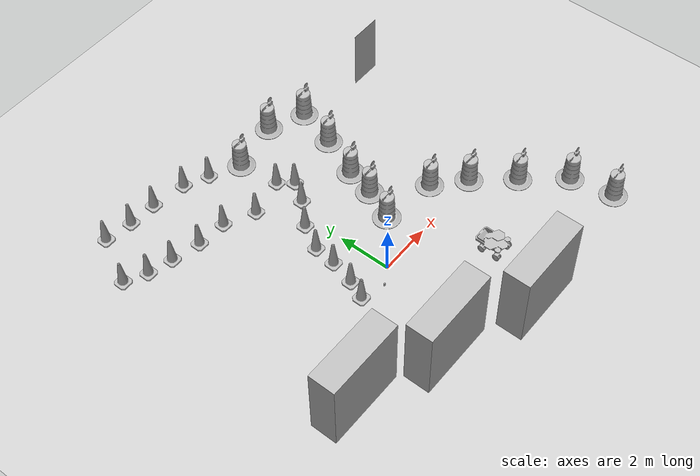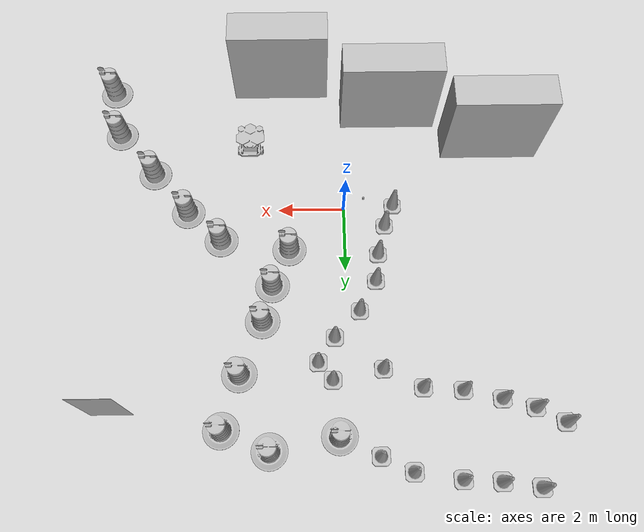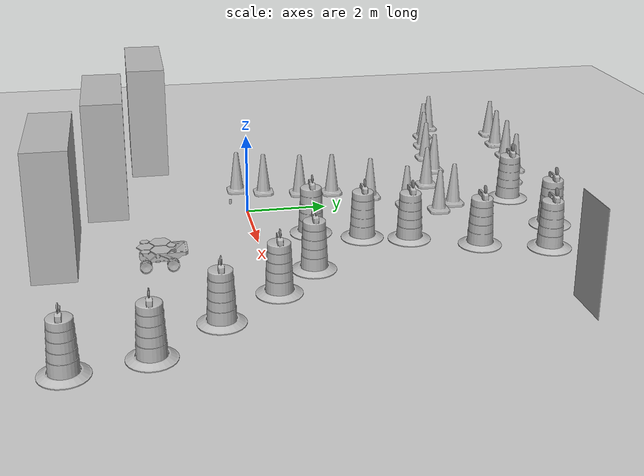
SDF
<sdf version="1.7">
 <world name="default">
  <light name="sun" type="directional">
   <pose>0 0 10 0 -0 0</pose>
   <diffuse>0.8 0.8 0.8 1</diffuse>
   <specular>0.2 0.2 0.2 1</specular>
   <attenuation>
    <range>1000</range>
    <constant>0.9</constant>
    <linear>0.01</linear>
    <quadratic>0.001</quadratic>
   </attenuation>
   <direction>-0.5 0.1 -0.9</direction>
   <spot><inner_angle>0</inner_angle><outer_angle>0</outer_angle><falloff>0</falloff></spot>
  </light>
  <model name="ground_plane">
   <static>1</static>
   <link name="link">
    <collision name="collision">
     <geometry><plane><normal>0 0 1</normal><size>100 100</size></plane></geometry>
     <surface>
      <contact><collide_bitmask>65535</collide_bitmask></contact>
      <friction><ode><mu>100</mu><mu2>50</mu2></ode></friction>
     </surface>
    </collision>
    <visual name="visual">
     <cast_shadows>0</cast_shadows>
     <geometry><plane><normal>0 0 1</normal><size>100 100</size></plane></geometry>
     <material>
      <script><uri>file://media/materials/scripts/gazebo.material</uri><name>Gazebo/Grey</name></script>
     </material>
    </visual>
   </link>
  </model>
  <gravity>0 0 -9.8</gravity>
  <magnetic_field>6e-06 2.3e-05 -4.2e-05</magnetic_field>
  <atmosphere type="adiabatic"/>
  <physics type="ode">
   <max_step_size>0.001</max_step_size>
   <real_time_factor>1</real_time_factor>
   <real_time_update_rate>1000</real_time_update_rate>
  </physics>
  <scene><ambient>0.4 0.4 0.4 1</ambient><background>0.7 0.7 0.7 1</background><shadows>1</shadows></scene>
  <spherical_coordinates>
   <surface_model>EARTH_WGS84</surface_model>
   <latitude_deg>0</latitude_deg>
   <longitude_deg>0</longitude_deg>
   <elevation>0</elevation>
   <heading_deg>0</heading_deg>
  </spherical_coordinates>
  <model name="mars_rover">
   <static>1</static>
   <link name="link">
    <collision name="solar_panel_collision">
     <pose>0 -0.06945 0.47293 0 -0 0</pose>
     <geometry><box><size>0.87974 0.8821 0.02602</size></box></geometry>
    </collision>
    <collision name="chassis_collision">
     <pose>0 -0.05 0.31475 0 -0 0</pose>
     <geometry><box><size>0.49522 0.67401 0.28915</size></box></geometry>
    </collision>
    <collision name="rear_left_bumper_collision">
     <pose>0.30107 0.3835 0.38976 0 -0 0</pose>
     <geometry><box><size>0.04442 0.38897 0.07918</size></box></geometry>
    </collision>
    <collision name="rear_right_bumper_collision">
     <pose>-0.30107 0.3835 0.38976 0 -0 0</pose>
     <geometry><box><size>0.04442 0.38897 0.07918</size></box></geometry>
    </collision>
    <collision name="rear_bumper_collision">
     <pose>0 0.59414 0.38976 0 -0 0</pose>
     <geometry><box><size>0.56656 0.04442 0.07918</size></box></geometry>
    </collision>
    <collision name="bin_back_panel_collision">
     <pose>0 0.47 0.32114 0.69137 -0 0</pose>
     <geometry><box><size>0.43774 0.212366 0.05173</size></box></geometry>
    </collision>
    <collision name="bin_left_panel_collision1">
     <pose>0.22615 0.32897 0.33193 0 -0 0</pose>
     <geometry><box><size>0.01116 0.19338 0.16304</size></box></geometry>
    </collision>
    <collision name="bin_left_panel_collision2">
     <pose>0.22615 0.471 0.39308 0 -0 0</pose>
     <geometry><box><size>0.01116 0.15 0.04</size></box></geometry>
    </collision>
    <collision name="bin_left_panel_collision3">
     <pose>0.22615 0.45 0.35308 0 -0 0</pose>
     <geometry><box><size>0.01116 0.15 0.04</size></box></geometry>
    </collision>
    <collision name="bin_left_panel_collision4">
     <pose>0.22615 0.39308 0.31308 0 -0 0</pose>
     <geometry><box><size>0.01116 0.15 0.04</size></box></geometry>
    </collision>
    <collision name="bin_right_panel_collision1">
     <pose>-0.22615 0.32897 0.33193 0 -0 0</pose>
     <geometry><box><size>0.01116 0.19338 0.16304</size></box></geometry>
    </collision>
    <collision name="bin_right_panel_collision2">
     <pose>-0.22615 0.471 0.39308 0 -0 0</pose>
     <geometry><box><size>0.01116 0.15 0.04</size></box></geometry>
    </collision>
    <collision name="bin_right_panel_collision3">
     <pose>-0.22615 0.45 0.35308 0 -0 0</pose>
     <geometry><box><size>0.01116 0.15 0.04</size></box></geometry>
    </collision>
    <collision name="bin_right_panel_collision4">
     <pose>-0.22615 0.39308 0.31308 0 -0 0</pose>
     <geometry><box><size>0.01116 0.15 0.04</size></box></geometry>
    </collision>
    <collision name="bin_front_panel_collision">
     <pose>0 0.30047 0.32114 2.26207 -0 0</pose>
     <geometry><box><size>0.43774 0.212366 0.05173</size></box></geometry>
    </collision>
    <collision name="front_left_wheel_collision">
     <pose>0.31103 -0.32115 0.1358 1.5707 0 1.5707</pose>
     <geometry><cylinder><radius>0.1358</radius><length>0.1641</length></cylinder></geometry>
    </collision>
    <collision name="front_right_wheel_collision">
     <pose>-0.31103 -0.32115 0.1358 1.5707 0 1.5707</pose>
     <geometry><cylinder><radius>0.1358</radius><length>0.1641</length></cylinder></geometry>
    </collision>
    <collision name="rear_left_wheel_collision">
     <pose>0.31103 0.28049 0.1358 1.5707 0 1.5707</pose>
     <geometry><cylinder><radius>0.1358</radius><length>0.1641</length></cylinder></geometry>
    </collision>
    <collision name="rear_right_wheel_collision">
     <pose>-0.31103 0.28049 0.1358 1.5707 0 1.5707</pose>
     <geometry><cylinder><radius>0.1358</radius><length>0.1641</length></cylinder></geometry>
    </collision>
    <visual name="visual">
     <geometry><mesh><uri>model://mars_rover/meshes/rover.dae</uri></mesh></geometry>
    </visual>
   </link>
   <pose>2.91045 -2.34324 0 0 -0 0</pose>
  </model>
  <model name="nist_maze_wall_240">
   <static>1</static>
   <link name="nist__maze_wall_240_link">
    <collision name="collision">
     <geometry>
      <mesh><uri>model://nist_maze_wall_240/meshes/nist_maze_wall_240.dae</uri><scale>1 1 1</scale></mesh>
     </geometry>
    </collision>
    <visual name="visual">
     <geometry>
      <mesh><uri>model://nist_maze_wall_240/meshes/nist_maze_wall_240.dae</uri><scale>1 1 1</scale></mesh>
     </geometry>
    </visual>
   </link>
   <pose>6.56334 5.58057 0 0 -0 0</pose>
  </model>
  <model name="brick_box_3x1x3">
   <static>1</static>
   <link name="chassis">
    <pose>0 0 1.5 0 -0 0</pose>
    <collision name="collision"><geometry><box><size>3 1 3</size></box></geometry></collision>
    <visual name="visual">
     <geometry><mesh><uri>model://brick_box_3x1x3/meshes/simple_box.dae</uri><scale>3 1 3</scale></mesh></geometry>
     <material>
      <script>
       <uri>model://brick_box_3x1x3/materials/scripts</uri>
       <uri>model://brick_box_3x1x3/materials/textures</uri>
       <name>BrickBox/Diffuse</name>
      </script>
     </material>
    </visual>
   </link>
   <pose>1.9547 -4.64156 0 0 -0 0</pose>
  </model>
  <model name="brick_box_3x1x3_0">
   <static>1</static>
   <link name="chassis">
    <pose>0 0 1.5 0 -0 0</pose>
    <collision name="collision"><geometry><box><size>3 1 3</size></box></geometry></collision>
    <visual name="visual">
     <geometry><mesh><uri>model://brick_box_3x1x3/meshes/simple_box.dae</uri><scale>3 1 3</scale></mesh></geometry>
     <material>
      <script>
       <uri>model://brick_box_3x1x3/materials/scripts</uri>
       <uri>model://brick_box_3x1x3/materials/textures</uri>
       <name>BrickBox/Diffuse</name>
      </script>
     </material>
    </visual>
   </link>
   <pose>-1.46563 -3.47447 0 0 -0 0</pose>
  </model>
  <model name="brick_box_3x1x3_1">
   <static>1</static>
   <link name="chassis">
    <pose>0 0 1.5 0 -0 0</pose>
    <collision name="collision"><geometry><box><size>3 1 3</size></box></geometry></collision>
    <visual name="visual">
     <geometry><mesh><uri>model://brick_box_3x1x3/meshes/simple_box.dae</uri><scale>3 1 3</scale></mesh></geometry>
     <material>
      <script>
       <uri>model://brick_box_3x1x3/materials/scripts</uri>
       <uri>model://brick_box_3x1x3/materials/textures</uri>
       <name>BrickBox/Diffuse</name>
      </script>
     </material>
    </visual>
   </link>
   <pose>-4.63428 -2.31546 0 0 -0 0</pose>
  </model>
  <model name="coke_can">
   <link name="link">
    <inertial>
     <pose>0 0 0.06 0 -0 0</pose>
     <mass>0.39</mass>
     <inertia>
      <ixx>0.00055575</ixx>
      <ixy>0</ixy>
      <ixz>0</ixz>
      <iyy>0.00055575</iyy>
      <iyz>0</iyz>
      <izz>0.0001755</izz>
     </inertia>
    </inertial>
    <collision name="collision">
     <pose>0.003937 0.004724 -0.18 0 -0 0</pose>
     <geometry><mesh><uri>model://coke_can/meshes/coke_can.dae</uri></mesh></geometry>
     <surface>
      <friction><ode><mu>1</mu><mu2>1</mu2></ode></friction>
      <contact><ode><kp>1e+07</kp><kd>1</kd><min_depth>0.001</min_depth><max_vel>0.1</max_vel></ode></contact>
     </surface>
    </collision>
    <visual name="visual">
     <pose>0.003937 0.004724 -0.18 0 -0 0</pose>
     <geometry><mesh><uri>model://coke_can/meshes/coke_can.dae</uri></mesh></geometry>
    </visual>
   </link>
   <pose>-0.618483 -0.372237 -0.003472 -0.036729 0.008267 -0.000719</pose>
  </model>
  <model name="Construction Barrel">
   <link name="link">
    <inertial>
     <pose>0 0 0.4 0 -0 0</pose>
     <mass>500</mass>
     <inertia><ixx>51.2096</ixx><iyy>51.2096</iyy><izz>25</izz><ixy>0</ixy><ixz>0</ixz><iyz>0</iyz></inertia>
    </inertial>
    <collision name="collision">
     <geometry><mesh><uri>model://construction_barrel/meshes/construction_barrel.dae</uri></mesh></geometry>
    </collision>
    <visual name="visual">
     <geometry><mesh><uri>model://construction_barrel/meshes/construction_barrel.dae</uri></mesh></geometry>
    </visual>
   </link>
   <pose>7.39967 -4.30252 0 0 0 -4.1e-05</pose>
  </model>
  <model name="Construction Barrel_clone">
   <link name="link">
    <inertial>
     <pose>0 0 0.4 0 -0 0</pose>
     <mass>500</mass>
     <inertia><ixx>51.2096</ixx><iyy>51.2096</iyy><izz>25</izz><ixy>0</ixy><ixz>0</ixz><iyz>0</iyz></inertia>
    </inertial>
    <collision name="collision">
     <geometry><mesh><uri>model://construction_barrel/meshes/construction_barrel.dae</uri></mesh></geometry>
    </collision>
    <visual name="visual">
     <geometry><mesh><uri>model://construction_barrel/meshes/construction_barrel.dae</uri></mesh></geometry>
    </visual>
   </link>
   <pose>7.08555 -2.70206 -0 0 0 -3.9e-05</pose>
  </model>
  <model name="Construction Barrel_clone_0">
   <link name="link">
    <inertial>
     <pose>0 0 0.4 0 -0 0</pose>
     <mass>500</mass>
     <inertia><ixx>51.2096</ixx><iyy>51.2096</iyy><izz>25</izz><ixy>0</ixy><ixz>0</ixz><iyz>0</iyz></inertia>
    </inertial>
    <collision name="collision">
     <geometry><mesh><uri>model://construction_barrel/meshes/construction_barrel.dae</uri></mesh></geometry>
    </collision>
    <visual name="visual">
     <geometry><mesh><uri>model://construction_barrel/meshes/construction_barrel.dae</uri></mesh></geometry>
    </visual>
   </link>
   <pose>5.90485 -1.26932 0 0 0 -4.2e-05</pose>
  </model>
  <model name="Construction Barrel_clone_1">
   <link name="link">
    <inertial>
     <pose>0 0 0.4 0 -0 0</pose>
     <mass>500</mass>
     <inertia><ixx>51.2096</ixx><iyy>51.2096</iyy><izz>25</izz><ixy>0</ixy><ixz>0</ixz><iyz>0</iyz></inertia>
    </inertial>
    <collision name="collision">
     <geometry><mesh><uri>model://construction_barrel/meshes/construction_barrel.dae</uri></mesh></geometry>
    </collision>
    <visual name="visual">
     <geometry><mesh><uri>model://construction_barrel/meshes/construction_barrel.dae</uri></mesh></geometry>
    </visual>
   </link>
   <pose>4.79028 0.067904 0 0 0 -4.2e-05</pose>
  </model>
  <model name="Construction Barrel_clone_2">
   <link name="link">
    <inertial>
     <pose>0 0 0.4 0 -0 0</pose>
     <mass>500</mass>
     <inertia><ixx>51.2096</ixx><iyy>51.2096</iyy><izz>25</izz><ixy>0</ixy><ixz>0</ixz><iyz>0</iyz></inertia>
    </inertial>
    <collision name="collision">
     <geometry><mesh><uri>model://construction_barrel/meshes/construction_barrel.dae</uri></mesh></geometry>
    </collision>
    <visual name="visual">
     <geometry><mesh><uri>model://construction_barrel/meshes/construction_barrel.dae</uri></mesh></geometry>
    </visual>
   </link>
   <pose>3.73861 1.01577 0 0 0 -4.3e-05</pose>
  </model>
  <model name="Construction Barrel_clone_3">
   <link name="link">
    <inertial>
     <pose>0 0 0.4 0 -0 0</pose>
     <mass>500</mass>
     <inertia><ixx>51.2096</ixx><iyy>51.2096</iyy><izz>25</izz><ixy>0</ixy><ixz>0</ixz><iyz>0</iyz></inertia>
    </inertial>
    <collision name="collision">
     <geometry><mesh><uri>model://construction_barrel/meshes/construction_barrel.dae</uri></mesh></geometry>
    </collision>
    <visual name="visual">
     <geometry><mesh><uri>model://construction_barrel/meshes/construction_barrel.dae</uri></mesh></geometry>
    </visual>
   </link>
   <pose>1.67146 1.32569 -1e-06 2e-06 -1e-06 -4.2e-05</pose>
  </model>
  <model name="Construction Barrel_clone_4">
   <link name="link">
    <inertial>
     <pose>0 0 0.4 0 -0 0</pose>
     <mass>500</mass>
     <inertia><ixx>51.2096</ixx><iyy>51.2096</iyy><izz>25</izz><ixy>0</ixy><ixz>0</ixz><iyz>0</iyz></inertia>
    </inertial>
    <collision name="collision">
     <geometry><mesh><uri>model://construction_barrel/meshes/construction_barrel.dae</uri></mesh></geometry>
    </collision>
    <visual name="visual">
     <geometry><mesh><uri>model://construction_barrel/meshes/construction_barrel.dae</uri></mesh></geometry>
    </visual>
   </link>
   <pose>2.16975 2.48047 -2e-06 7e-06 -4e-06 -3.4e-05</pose>
  </model>
  <model name="Construction Barrel_clone_5">
   <link name="link">
    <inertial>
     <pose>0 0 0.4 0 -0 0</pose>
     <mass>500</mass>
     <inertia><ixx>51.2096</ixx><iyy>51.2096</iyy><izz>25</izz><ixy>0</ixy><ixz>0</ixz><iyz>0</iyz></inertia>
    </inertial>
    <collision name="collision">
     <geometry><mesh><uri>model://construction_barrel/meshes/construction_barrel.dae</uri></mesh></geometry>
    </collision>
    <visual name="visual">
     <geometry><mesh><uri>model://construction_barrel/meshes/construction_barrel.dae</uri></mesh></geometry>
    </visual>
   </link>
   <pose>2.44753 3.56349 -0 0 0 -3.5e-05</pose>
  </model>
  <model name="Construction Barrel_clone_6">
   <link name="link">
    <inertial>
     <pose>0 0 0.4 0 -0 0</pose>
     <mass>500</mass>
     <inertia><ixx>51.2096</ixx><iyy>51.2096</iyy><izz>25</izz><ixy>0</ixy><ixz>0</ixz><iyz>0</iyz></inertia>
    </inertial>
    <collision name="collision">
     <geometry><mesh><uri>model://construction_barrel/meshes/construction_barrel.dae</uri></mesh></geometry>
    </collision>
    <visual name="visual">
     <geometry><mesh><uri>model://construction_barrel/meshes/construction_barrel.dae</uri></mesh></geometry>
    </visual>
   </link>
   <pose>3.07617 5.10714 -2e-06 7e-06 -4e-06 -3.9e-05</pose>
  </model>
  <model name="Construction Barrel_clone_7">
   <link name="link">
    <inertial>
     <pose>0 0 0.4 0 -0 0</pose>
     <mass>500</mass>
     <inertia><ixx>51.2096</ixx><iyy>51.2096</iyy><izz>25</izz><ixy>0</ixy><ixz>0</ixz><iyz>0</iyz></inertia>
    </inertial>
    <collision name="collision">
     <geometry><mesh><uri>model://construction_barrel/meshes/construction_barrel.dae</uri></mesh></geometry>
    </collision>
    <visual name="visual">
     <geometry><mesh><uri>model://construction_barrel/meshes/construction_barrel.dae</uri></mesh></geometry>
    </visual>
   </link>
   <pose>3.53736 6.64909 -2e-06 7e-06 -4e-06 -3.9e-05</pose>
  </model>
  <model name="Construction Barrel_clone_8">
   <link name="link">
    <inertial>
     <pose>0 0 0.4 0 -0 0</pose>
     <mass>500</mass>
     <inertia><ixx>51.2096</ixx><iyy>51.2096</iyy><izz>25</izz><ixy>0</ixy><ixz>0</ixz><iyz>0</iyz></inertia>
    </inertial>
    <collision name="collision">
     <geometry><mesh><uri>model://construction_barrel/meshes/construction_barrel.dae</uri></mesh></geometry>
    </collision>
    <visual name="visual">
     <geometry><mesh><uri>model://construction_barrel/meshes/construction_barrel.dae</uri></mesh></geometry>
    </visual>
   </link>
   <pose>2.19668 7.21691 -2e-06 7e-06 -4e-06 -3.3e-05</pose>
  </model>
  <model name="Construction Barrel_clone_9">
   <link name="link">
    <inertial>
     <pose>0 0 0.4 0 -0 0</pose>
     <mass>500</mass>
     <inertia><ixx>51.2096</ixx><iyy>51.2096</iyy><izz>25</izz><ixy>0</ixy><ixz>0</ixz><iyz>0</iyz></inertia>
    </inertial>
    <collision name="collision">
     <geometry><mesh><uri>model://construction_barrel/meshes/construction_barrel.dae</uri></mesh></geometry>
    </collision>
    <visual name="visual">
     <geometry><mesh><uri>model://construction_barrel/meshes/construction_barrel.dae</uri></mesh></geometry>
    </visual>
   </link>
   <pose>0.277405 6.83859 -1e-06 0 5e-06 -3.8e-05</pose>
  </model>
  <model name="Construction Cone">
   <link name="link">
    <collision name="collision">
     <geometry>
      <mesh><scale>10 10 10</scale><uri>model://construction_cone/meshes/construction_cone.dae</uri></mesh>
     </geometry>
    </collision>
    <visual name="visual">
     <geometry>
      <mesh><scale>10 10 10</scale><uri>model://construction_cone/meshes/construction_cone.dae</uri></mesh>
     </geometry>
    </visual>
    <inertial>
     <inertia><ixx>1</ixx><ixy>0</ixy><ixz>0</ixz><iyy>1</iyy><iyz>0</iyz><izz>1</izz></inertia>
     <mass>1</mass>
    </inertial>
   </link>
   <pose>-0.83075 7.37895 -0 0 -0 0</pose>
  </model>
  <model name="Construction Cone_clone">
   <link name="link">
    <collision name="collision">
     <geometry>
      <mesh><scale>10 10 10</scale><uri>model://construction_cone/meshes/construction_cone.dae</uri></mesh>
     </geometry>
    </collision>
    <visual name="visual">
     <geometry>
      <mesh><scale>10 10 10</scale><uri>model://construction_cone/meshes/construction_cone.dae</uri></mesh>
     </geometry>
    </visual>
    <inertial>
     <inertia><ixx>1</ixx><ixy>0</ixy><ixz>0</ixz><iyy>1</iyy><iyz>0</iyz><izz>1</izz></inertia>
     <mass>1</mass>
    </inertial>
   </link>
   <pose>-1.7056 7.79193 -1e-05 -1e-06 0 0</pose>
  </model>
  <model name="Construction Cone_clone_0">
   <link name="link">
    <collision name="collision">
     <geometry>
      <mesh><scale>10 10 10</scale><uri>model://construction_cone/meshes/construction_cone.dae</uri></mesh>
     </geometry>
    </collision>
    <visual name="visual">
     <geometry>
      <mesh><scale>10 10 10</scale><uri>model://construction_cone/meshes/construction_cone.dae</uri></mesh>
     </geometry>
    </visual>
    <inertial>
     <inertia><ixx>1</ixx><ixy>0</ixy><ixz>0</ixz><iyy>1</iyy><iyz>0</iyz><izz>1</izz></inertia>
     <mass>1</mass>
    </inertial>
   </link>
   <pose>-3 8 -0 0 -1e-06 0</pose>
  </model>
  <model name="Construction Cone_clone_1">
   <link name="link">
    <collision name="collision">
     <geometry>
      <mesh><scale>10 10 10</scale><uri>model://construction_cone/meshes/construction_cone.dae</uri></mesh>
     </geometry>
    </collision>
    <visual name="visual">
     <geometry>
      <mesh><scale>10 10 10</scale><uri>model://construction_cone/meshes/construction_cone.dae</uri></mesh>
     </geometry>
    </visual>
    <inertial>
     <inertia><ixx>1</ixx><ixy>0</ixy><ixz>0</ixz><iyy>1</iyy><iyz>0</iyz><izz>1</izz></inertia>
     <mass>1</mass>
    </inertial>
   </link>
   <pose>-4.04381 8.0631 -0 0 -0 0</pose>
  </model>
  <model name="Construction Cone_clone_2">
   <link name="link">
    <collision name="collision">
     <geometry>
      <mesh><scale>10 10 10</scale><uri>model://construction_cone/meshes/construction_cone.dae</uri></mesh>
     </geometry>
    </collision>
    <visual name="visual">
     <geometry>
      <mesh><scale>10 10 10</scale><uri>model://construction_cone/meshes/construction_cone.dae</uri></mesh>
     </geometry>
    </visual>
    <inertial>
     <inertia><ixx>1</ixx><ixy>0</ixy><ixz>0</ixz><iyy>1</iyy><iyz>0</iyz><izz>1</izz></inertia>
     <mass>1</mass>
    </inertial>
   </link>
   <pose>-5.08221 8.22337 -0 0 -1e-06 0</pose>
  </model>
  <model name="Construction Cone_clone_3">
   <link name="link">
    <collision name="collision">
     <geometry>
      <mesh><scale>10 10 10</scale><uri>model://construction_cone/meshes/construction_cone.dae</uri></mesh>
     </geometry>
    </collision>
    <visual name="visual">
     <geometry>
      <mesh><scale>10 10 10</scale><uri>model://construction_cone/meshes/construction_cone.dae</uri></mesh>
     </geometry>
    </visual>
    <inertial>
     <inertia><ixx>1</ixx><ixy>0</ixy><ixz>0</ixz><iyy>1</iyy><iyz>0</iyz><izz>1</izz></inertia>
     <mass>1</mass>
    </inertial>
   </link>
   <pose>-5.96503 6.51989 -0 0 -0 0</pose>
  </model>
  <model name="Construction Cone_clone_4">
   <link name="link">
    <collision name="collision">
     <geometry>
      <mesh><scale>10 10 10</scale><uri>model://construction_cone/meshes/construction_cone.dae</uri></mesh>
     </geometry>
    </collision>
    <visual name="visual">
     <geometry>
      <mesh><scale>10 10 10</scale><uri>model://construction_cone/meshes/construction_cone.dae</uri></mesh>
     </geometry>
    </visual>
    <inertial>
     <inertia><ixx>1</ixx><ixy>0</ixy><ixz>0</ixz><iyy>1</iyy><iyz>0</iyz><izz>1</izz></inertia>
     <mass>1</mass>
    </inertial>
   </link>
   <pose>-5.1758 6.1163 -8e-06 0 1e-06 0</pose>
  </model>
  <model name="Construction Cone_clone_5">
   <link name="link">
    <collision name="collision">
     <geometry>
      <mesh><scale>10 10 10</scale><uri>model://construction_cone/meshes/construction_cone.dae</uri></mesh>
     </geometry>
    </collision>
    <visual name="visual">
     <geometry>
      <mesh><scale>10 10 10</scale><uri>model://construction_cone/meshes/construction_cone.dae</uri></mesh>
     </geometry>
    </visual>
    <inertial>
     <inertia><ixx>1</ixx><ixy>0</ixy><ixz>0</ixz><iyy>1</iyy><iyz>0</iyz><izz>1</izz></inertia>
     <mass>1</mass>
    </inertial>
   </link>
   <pose>-4.27785 5.87185 -0 0 -1e-06 0</pose>
  </model>
  <model name="Construction Cone_clone_6">
   <link name="link">
    <collision name="collision">
     <geometry>
      <mesh><scale>10 10 10</scale><uri>model://construction_cone/meshes/construction_cone.dae</uri></mesh>
     </geometry>
    </collision>
    <visual name="visual">
     <geometry>
      <mesh><scale>10 10 10</scale><uri>model://construction_cone/meshes/construction_cone.dae</uri></mesh>
     </geometry>
    </visual>
    <inertial>
     <inertia><ixx>1</ixx><ixy>0</ixy><ixz>0</ixz><iyy>1</iyy><iyz>0</iyz><izz>1</izz></inertia>
     <mass>1</mass>
    </inertial>
   </link>
   <pose>-3.20763 5.62111 -1e-05 0 -0 0</pose>
  </model>
  <model name="Construction Cone_clone_7">
   <link name="link">
    <collision name="collision">
     <geometry>
      <mesh><scale>10 10 10</scale><uri>model://construction_cone/meshes/construction_cone.dae</uri></mesh>
     </geometry>
    </collision>
    <visual name="visual">
     <geometry>
      <mesh><scale>10 10 10</scale><uri>model://construction_cone/meshes/construction_cone.dae</uri></mesh>
     </geometry>
    </visual>
    <inertial>
     <inertia><ixx>1</ixx><ixy>0</ixy><ixz>0</ixz><iyy>1</iyy><iyz>0</iyz><izz>1</izz></inertia>
     <mass>1</mass>
    </inertial>
   </link>
   <pose>-2.09437 5.53706 -0 0 -1e-06 0</pose>
  </model>
  <model name="Construction Cone_clone_8">
   <link name="link">
    <collision name="collision">
     <geometry>
      <mesh><scale>10 10 10</scale><uri>model://construction_cone/meshes/construction_cone.dae</uri></mesh>
     </geometry>
    </collision>
    <visual name="visual">
     <geometry>
      <mesh><scale>10 10 10</scale><uri>model://construction_cone/meshes/construction_cone.dae</uri></mesh>
     </geometry>
    </visual>
    <inertial>
     <inertia><ixx>1</ixx><ixy>0</ixy><ixz>0</ixz><iyy>1</iyy><iyz>0</iyz><izz>1</izz></inertia>
     <mass>1</mass>
    </inertial>
   </link>
   <pose>-1 5 -0 0 -1e-06 0</pose>
  </model>
  <model name="Construction Cone_clone_9">
   <link name="link">
    <collision name="collision">
     <geometry>
      <mesh><scale>10 10 10</scale><uri>model://construction_cone/meshes/construction_cone.dae</uri></mesh>
     </geometry>
    </collision>
    <visual name="visual">
     <geometry>
      <mesh><scale>10 10 10</scale><uri>model://construction_cone/meshes/construction_cone.dae</uri></mesh>
     </geometry>
    </visual>
    <inertial>
     <inertia><ixx>1</ixx><ixy>0</ixy><ixz>0</ixz><iyy>1</iyy><iyz>0</iyz><izz>1</izz></inertia>
     <mass>1</mass>
    </inertial>
   </link>
   <pose>0.432912 5.29783 -0 0 -1e-06 0</pose>
  </model>
  <model name="Construction Cone_clone_10">
   <link name="link">
    <collision name="collision">
     <geometry>
      <mesh><scale>10 10 10</scale><uri>model://construction_cone/meshes/construction_cone.dae</uri></mesh>
     </geometry>
    </collision>
    <visual name="visual">
     <geometry>
      <mesh><scale>10 10 10</scale><uri>model://construction_cone/meshes/construction_cone.dae</uri></mesh>
     </geometry>
    </visual>
    <inertial>
     <inertia><ixx>1</ixx><ixy>0</ixy><ixz>0</ixz><iyy>1</iyy><iyz>0</iyz><izz>1</izz></inertia>
     <mass>1</mass>
    </inertial>
   </link>
   <pose>0.838368 4.7937 -0 0 -1e-06 0</pose>
  </model>
  <model name="Construction Cone_clone_11">
   <link name="link">
    <collision name="collision">
     <geometry>
      <mesh><scale>10 10 10</scale><uri>model://construction_cone/meshes/construction_cone.dae</uri></mesh>
     </geometry>
    </collision>
    <visual name="visual">
     <geometry>
      <mesh><scale>10 10 10</scale><uri>model://construction_cone/meshes/construction_cone.dae</uri></mesh>
     </geometry>
    </visual>
    <inertial>
     <inertia><ixx>1</ixx><ixy>0</ixy><ixz>0</ixz><iyy>1</iyy><iyz>0</iyz><izz>1</izz></inertia>
     <mass>1</mass>
    </inertial>
   </link>
   <pose>0.35689 4.06841 0 -0 -0 -0</pose>
  </model>
  <model name="Construction Cone_clone_12">
   <link name="link">
    <collision name="collision">
     <geometry>
      <mesh><scale>10 10 10</scale><uri>model://construction_cone/meshes/construction_cone.dae</uri></mesh>
     </geometry>
    </collision>
    <visual name="visual">
     <geometry>
      <mesh><scale>10 10 10</scale><uri>model://construction_cone/meshes/construction_cone.dae</uri></mesh>
     </geometry>
    </visual>
    <inertial>
     <inertia><ixx>1</ixx><ixy>0</ixy><ixz>0</ixz><iyy>1</iyy><iyz>0</iyz><izz>1</izz></inertia>
     <mass>1</mass>
    </inertial>
   </link>
   <pose>-0.390164 3.28291 -0 0 -1e-06 0</pose>
  </model>
  <model name="Construction Cone_clone_13">
   <link name="link">
    <collision name="collision">
     <geometry>
      <mesh><scale>10 10 10</scale><uri>model://construction_cone/meshes/construction_cone.dae</uri></mesh>
     </geometry>
    </collision>
    <visual name="visual">
     <geometry>
      <mesh><scale>10 10 10</scale><uri>model://construction_cone/meshes/construction_cone.dae</uri></mesh>
     </geometry>
    </visual>
    <inertial>
     <inertia><ixx>1</ixx><ixy>0</ixy><ixz>0</ixz><iyy>1</iyy><iyz>0</iyz><izz>1</izz></inertia>
     <mass>1</mass>
    </inertial>
   </link>
   <pose>-0.899565 2.3611 -0 1e-06 -0 0</pose>
  </model>
  <model name="Construction Cone_clone_14">
   <link name="link">
    <collision name="collision">
     <geometry>
      <mesh><scale>10 10 10</scale><uri>model://construction_cone/meshes/construction_cone.dae</uri></mesh>
     </geometry>
    </collision>
    <visual name="visual">
     <geometry>
      <mesh><scale>10 10 10</scale><uri>model://construction_cone/meshes/construction_cone.dae</uri></mesh>
     </geometry>
    </visual>
    <inertial>
     <inertia><ixx>1</ixx><ixy>0</ixy><ixz>0</ixz><iyy>1</iyy><iyz>0</iyz><izz>1</izz></inertia>
     <mass>1</mass>
    </inertial>
   </link>
   <pose>-1 1.51464 -0 0 -0 0</pose>
  </model>
  <model name="Construction Cone_clone_15">
   <link name="link">
    <collision name="collision">
     <geometry>
      <mesh><scale>10 10 10</scale><uri>model://construction_cone/meshes/construction_cone.dae</uri></mesh>
     </geometry>
    </collision>
    <visual name="visual">
     <geometry>
      <mesh><scale>10 10 10</scale><uri>model://construction_cone/meshes/construction_cone.dae</uri></mesh>
     </geometry>
    </visual>
    <inertial>
     <inertia><ixx>1</ixx><ixy>0</ixy><ixz>0</ixz><iyy>1</iyy><iyz>0</iyz><izz>1</izz></inertia>
     <mass>1</mass>
    </inertial>
   </link>
   <pose>-1.22988 0.583132 -8e-06 0 1e-06 0</pose>
  </model>
  <model name="Construction Cone_clone_16">
   <link name="link">
    <collision name="collision">
     <geometry>
      <mesh><scale>10 10 10</scale><uri>model://construction_cone/meshes/construction_cone.dae</uri></mesh>
     </geometry>
    </collision>
    <visual name="visual">
     <geometry>
      <mesh><scale>10 10 10</scale><uri>model://construction_cone/meshes/construction_cone.dae</uri></mesh>
     </geometry>
    </visual>
    <inertial>
     <inertia><ixx>1</ixx><ixy>0</ixy><ixz>0</ixz><iyy>1</iyy><iyz>0</iyz><izz>1</izz></inertia>
     <mass>1</mass>
    </inertial>
   </link>
   <pose>-1.50908 -0.097596 -0 0 -0 0</pose>
  </model>
 </world>
</sdf>
